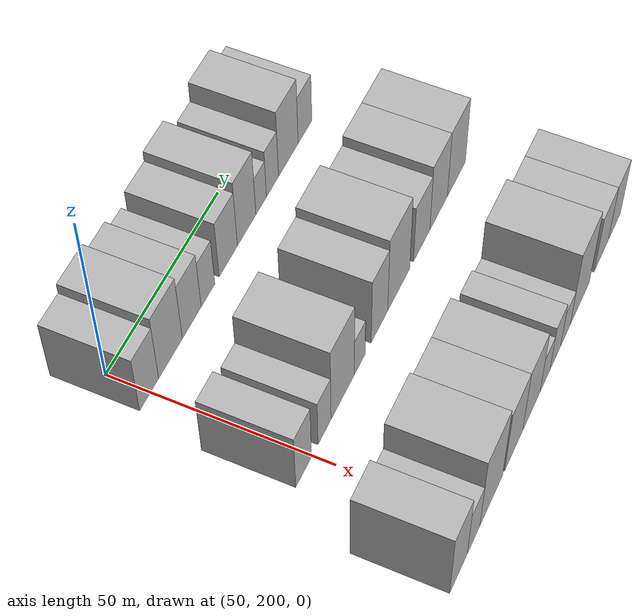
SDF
<sdf version="1.6">
 <world name="default">
  <model name="building_62">
   <static>1</static>
   <pose>50.0000 199.4339 0 0.000000 0.000000 0.000000</pose>
   <link name="link">
    <pose>0 0 9.00 0 0 0</pose>
    <collision name="collision"><geometry><box><size>20.0000 8.0856 18.0000</size></box></geometry></collision>
    <visual name="visual">
     <cast_shadows>0</cast_shadows>
     <geometry><box><size>20.0000 8.0856 18.0000</size></box></geometry>
     <material>
      <script>
       <uri>model://HANNAS_wall/materials/scripts</uri>
       <uri>model://HANNAS_wall/materials/textures</uri>
       <name>vrc/HANNAS_wall</name>
      </script>
     </material>
    </visual>
   </link>
  </model>
  <model name="building_63">
   <static>1</static>
   <pose>50.0000 208.6387 0 0.000000 0.000000 0.000000</pose>
   <link name="link">
    <pose>0 0 10.50 0 0 0</pose>
    <collision name="collision"><geometry><box><size>20.0000 10.3241 21.0000</size></box></geometry></collision>
    <visual name="visual">
     <cast_shadows>0</cast_shadows>
     <geometry><box><size>20.0000 10.3241 21.0000</size></box></geometry>
     <material>
      <script>
       <uri>model://HANNAS_wall/materials/scripts</uri>
       <uri>model://HANNAS_wall/materials/textures</uri>
       <name>vrc/HANNAS_wall</name>
      </script>
     </material>
    </visual>
   </link>
  </model>
  <model name="building_64">
   <static>1</static>
   <pose>50.0000 218.0024 0 0.000000 0.000000 0.000000</pose>
   <link name="link">
    <pose>0 0 9.00 0 0 0</pose>
    <collision name="collision"><geometry><box><size>20.0000 8.4034 18.0000</size></box></geometry></collision>
    <visual name="visual">
     <cast_shadows>0</cast_shadows>
     <geometry><box><size>20.0000 8.4034 18.0000</size></box></geometry>
     <material>
      <script>
       <uri>model://HANNAS_wall/materials/scripts</uri>
       <uri>model://HANNAS_wall/materials/textures</uri>
       <name>vrc/HANNAS_wall</name>
      </script>
     </material>
    </visual>
   </link>
  </model>
  <model name="building_65">
   <static>1</static>
   <pose>50.0000 225.3311 0 0.000000 0.000000 0.000000</pose>
   <link name="link">
    <pose>0 0 7.50 0 0 0</pose>
    <collision name="collision"><geometry><box><size>20.0000 6.2540 15.0000</size></box></geometry></collision>
    <visual name="visual">
     <cast_shadows>0</cast_shadows>
     <geometry><box><size>20.0000 6.2540 15.0000</size></box></geometry>
     <material>
      <script>
       <uri>model://HANNAS_wall/materials/scripts</uri>
       <uri>model://HANNAS_wall/materials/textures</uri>
       <name>vrc/HANNAS_wall</name>
      </script>
     </material>
    </visual>
   </link>
  </model>
  <model name="building_66">
   <static>1</static>
   <pose>50.0000 234.7401 0 0.000000 0.000000 0.000000</pose>
   <link name="link">
    <pose>0 0 9.00 0 0 0</pose>
    <collision name="collision"><geometry><box><size>20.0000 8.5640 18.0000</size></box></geometry></collision>
    <visual name="visual">
     <cast_shadows>0</cast_shadows>
     <geometry><box><size>20.0000 8.5640 18.0000</size></box></geometry>
     <material>
      <script>
       <uri>model://HANNAS_wall/materials/scripts</uri>
       <uri>model://HANNAS_wall/materials/textures</uri>
       <name>vrc/HANNAS_wall</name>
      </script>
     </material>
    </visual>
   </link>
  </model>
  <model name="building_67">
   <static>1</static>
   <pose>50.0000 243.4571 0 0.000000 0.000000 0.000000</pose>
   <link name="link">
    <pose>0 0 10.50 0 0 0</pose>
    <collision name="collision"><geometry><box><size>20.0000 8.8699 21.0000</size></box></geometry></collision>
    <visual name="visual">
     <cast_shadows>0</cast_shadows>
     <geometry><box><size>20.0000 8.8699 21.0000</size></box></geometry>
     <material>
      <script>
       <uri>model://HANNAS_wall/materials/scripts</uri>
       <uri>model://HANNAS_wall/materials/textures</uri>
       <name>vrc/HANNAS_wall</name>
      </script>
     </material>
    </visual>
   </link>
  </model>
  <model name="building_68">
   <static>1</static>
   <pose>50.0000 250.4916 0 0.000000 0.000000 0.000000</pose>
   <link name="link">
    <pose>0 0 6.00 0 0 0</pose>
    <collision name="collision"><geometry><box><size>20.0000 5.1992 12.0000</size></box></geometry></collision>
    <visual name="visual">
     <cast_shadows>0</cast_shadows>
     <geometry><box><size>20.0000 5.1992 12.0000</size></box></geometry>
     <material>
      <script>
       <uri>model://HANNAS_wall/materials/scripts</uri>
       <uri>model://HANNAS_wall/materials/textures</uri>
       <name>vrc/HANNAS_wall</name>
      </script>
     </material>
    </visual>
   </link>
  </model>
  <model name="building_69">
   <static>1</static>
   <pose>50.0000 256.1137 0 0.000000 0.000000 0.000000</pose>
   <link name="link">
    <pose>0 0 7.50 0 0 0</pose>
    <collision name="collision"><geometry><box><size>20.0000 6.0450 15.0000</size></box></geometry></collision>
    <visual name="visual">
     <cast_shadows>0</cast_shadows>
     <geometry><box><size>20.0000 6.0450 15.0000</size></box></geometry>
     <material>
      <script>
       <uri>model://HANNAS_wall/materials/scripts</uri>
       <uri>model://HANNAS_wall/materials/textures</uri>
       <name>vrc/HANNAS_wall</name>
      </script>
     </material>
    </visual>
   </link>
  </model>
  <model name="building_70">
   <static>1</static>
   <pose>50.0000 264.1032 0 0.000000 0.000000 0.000000</pose>
   <link name="link">
    <pose>0 0 10.50 0 0 0</pose>
    <collision name="collision"><geometry><box><size>20.0000 9.9339 21.0000</size></box></geometry></collision>
    <visual name="visual">
     <cast_shadows>0</cast_shadows>
     <geometry><box><size>20.0000 9.9339 21.0000</size></box></geometry>
     <material>
      <script>
       <uri>model://HANNAS_wall/materials/scripts</uri>
       <uri>model://HANNAS_wall/materials/textures</uri>
       <name>vrc/HANNAS_wall</name>
      </script>
     </material>
    </visual>
   </link>
  </model>
  <model name="building_71">
   <static>1</static>
   <pose>50.0000 272.6266 0 0.000000 0.000000 0.000000</pose>
   <link name="link">
    <pose>0 0 7.50 0 0 0</pose>
    <collision name="collision"><geometry><box><size>20.0000 7.1130 15.0000</size></box></geometry></collision>
    <visual name="visual">
     <cast_shadows>0</cast_shadows>
     <geometry><box><size>20.0000 7.1130 15.0000</size></box></geometry>
     <material>
      <script>
       <uri>model://HANNAS_wall/materials/scripts</uri>
       <uri>model://HANNAS_wall/materials/textures</uri>
       <name>vrc/HANNAS_wall</name>
      </script>
     </material>
    </visual>
   </link>
  </model>
  <model name="building_143">
   <static>1</static>
   <pose>85.0000 196.0362 0 0.000000 0.000000 0.000000</pose>
   <link name="link">
    <pose>0 0 9.00 0 0 0</pose>
    <collision name="collision"><geometry><box><size>20.0000 7.2174 18.0000</size></box></geometry></collision>
    <visual name="visual">
     <cast_shadows>0</cast_shadows>
     <geometry><box><size>20.0000 7.2174 18.0000</size></box></geometry>
     <material>
      <script>
       <uri>model://HANNAS_wall/materials/scripts</uri>
       <uri>model://HANNAS_wall/materials/textures</uri>
       <name>vrc/HANNAS_wall</name>
      </script>
     </material>
    </visual>
   </link>
  </model>
  <model name="building_144">
   <static>1</static>
   <pose>85.0000 205.6955 0 0.000000 0.000000 0.000000</pose>
   <link name="link">
    <pose>0 0 7.50 0 0 0</pose>
    <collision name="collision"><geometry><box><size>20.0000 6.1010 15.0000</size></box></geometry></collision>
    <visual name="visual">
     <cast_shadows>0</cast_shadows>
     <geometry><box><size>20.0000 6.1010 15.0000</size></box></geometry>
     <material>
      <script>
       <uri>model://HANNAS_wall/materials/scripts</uri>
       <uri>model://HANNAS_wall/materials/textures</uri>
       <name>vrc/HANNAS_wall</name>
      </script>
     </material>
    </visual>
   </link>
  </model>
  <model name="building_145">
   <static>1</static>
   <pose>85.0000 214.3514 0 0.000000 0.000000 0.000000</pose>
   <link name="link">
    <pose>0 0 12.00 0 0 0</pose>
    <collision name="collision"><geometry><box><size>20.0000 11.2107 24.0000</size></box></geometry></collision>
    <visual name="visual">
     <cast_shadows>0</cast_shadows>
     <geometry><box><size>20.0000 11.2107 24.0000</size></box></geometry>
     <material>
      <script>
       <uri>model://HANNAS_wall/materials/scripts</uri>
       <uri>model://HANNAS_wall/materials/textures</uri>
       <name>vrc/HANNAS_wall</name>
      </script>
     </material>
    </visual>
   </link>
  </model>
  <model name="building_146">
   <static>1</static>
   <pose>85.0000 222.6321 0 0.000000 0.000000 0.000000</pose>
   <link name="link">
    <pose>0 0 6.00 0 0 0</pose>
    <collision name="collision"><geometry><box><size>20.0000 5.3507 12.0000</size></box></geometry></collision>
    <visual name="visual">
     <cast_shadows>0</cast_shadows>
     <geometry><box><size>20.0000 5.3507 12.0000</size></box></geometry>
     <material>
      <script>
       <uri>model://HANNAS_wall/materials/scripts</uri>
       <uri>model://HANNAS_wall/materials/textures</uri>
       <name>vrc/HANNAS_wall</name>
      </script>
     </material>
    </visual>
   </link>
  </model>
  <model name="building_147">
   <static>1</static>
   <pose>85.0000 232.5090 0 0.000000 0.000000 0.000000</pose>
   <link name="link">
    <pose>0 0 10.50 0 0 0</pose>
    <collision name="collision"><geometry><box><size>20.0000 8.4032 21.0000</size></box></geometry></collision>
    <visual name="visual">
     <cast_shadows>0</cast_shadows>
     <geometry><box><size>20.0000 8.4032 21.0000</size></box></geometry>
     <material>
      <script>
       <uri>model://HANNAS_wall/materials/scripts</uri>
       <uri>model://HANNAS_wall/materials/textures</uri>
       <name>vrc/HANNAS_wall</name>
      </script>
     </material>
    </visual>
   </link>
  </model>
  <model name="building_148">
   <static>1</static>
   <pose>85.0000 242.4690 0 0.000000 0.000000 0.000000</pose>
   <link name="link">
    <pose>0 0 12.00 0 0 0</pose>
    <collision name="collision"><geometry><box><size>20.0000 11.5169 24.0000</size></box></geometry></collision>
    <visual name="visual">
     <cast_shadows>0</cast_shadows>
     <geometry><box><size>20.0000 11.5169 24.0000</size></box></geometry>
     <material>
      <script>
       <uri>model://HANNAS_wall/materials/scripts</uri>
       <uri>model://HANNAS_wall/materials/textures</uri>
       <name>vrc/HANNAS_wall</name>
      </script>
     </material>
    </visual>
   </link>
  </model>
  <model name="building_149">
   <static>1</static>
   <pose>85.0000 254.6485 0 0.000000 0.000000 0.000000</pose>
   <link name="link">
    <pose>0 0 9.00 0 0 0</pose>
    <collision name="collision"><geometry><box><size>20.0000 8.8421 18.0000</size></box></geometry></collision>
    <visual name="visual">
     <cast_shadows>0</cast_shadows>
     <geometry><box><size>20.0000 8.8421 18.0000</size></box></geometry>
     <material>
      <script>
       <uri>model://HANNAS_wall/materials/scripts</uri>
       <uri>model://HANNAS_wall/materials/textures</uri>
       <name>vrc/HANNAS_wall</name>
      </script>
     </material>
    </visual>
   </link>
  </model>
  <model name="building_150">
   <static>1</static>
   <pose>85.0000 263.9497 0 0.000000 0.000000 0.000000</pose>
   <link name="link">
    <pose>0 0 10.50 0 0 0</pose>
    <collision name="collision"><geometry><box><size>20.0000 9.7602 21.0000</size></box></geometry></collision>
    <visual name="visual">
     <cast_shadows>0</cast_shadows>
     <geometry><box><size>20.0000 9.7602 21.0000</size></box></geometry>
     <material>
      <script>
       <uri>model://HANNAS_wall/materials/scripts</uri>
       <uri>model://HANNAS_wall/materials/textures</uri>
       <name>vrc/HANNAS_wall</name>
      </script>
     </material>
    </visual>
   </link>
  </model>
  <model name="building_151">
   <static>1</static>
   <pose>85.0000 273.9224 0 0.000000 0.000000 0.000000</pose>
   <link name="link">
    <pose>0 0 10.50 0 0 0</pose>
    <collision name="collision"><geometry><box><size>20.0000 10.1851 21.0000</size></box></geometry></collision>
    <visual name="visual">
     <cast_shadows>0</cast_shadows>
     <geometry><box><size>20.0000 10.1851 21.0000</size></box></geometry>
     <material>
      <script>
       <uri>model://HANNAS_wall/materials/scripts</uri>
       <uri>model://HANNAS_wall/materials/textures</uri>
       <name>vrc/HANNAS_wall</name>
      </script>
     </material>
    </visual>
   </link>
  </model>
  <model name="building_223">
   <static>1</static>
   <pose>120.0000 188.3859 0 0.000000 0.000000 0.000000</pose>
   <link name="link">
    <pose>0 0 10.50 0 0 0</pose>
    <collision name="collision"><geometry><box><size>20.0000 8.7671 21.0000</size></box></geometry></collision>
    <visual name="visual">
     <cast_shadows>0</cast_shadows>
     <geometry><box><size>20.0000 8.7671 21.0000</size></box></geometry>
     <material>
      <script>
       <uri>model://HANNAS_wall/materials/scripts</uri>
       <uri>model://HANNAS_wall/materials/textures</uri>
       <name>vrc/HANNAS_wall</name>
      </script>
     </material>
    </visual>
   </link>
  </model>
  <model name="building_224">
   <static>1</static>
   <pose>120.0000 195.9147 0 0.000000 0.000000 0.000000</pose>
   <link name="link">
    <pose>0 0 7.50 0 0 0</pose>
    <collision name="collision"><geometry><box><size>20.0000 6.2905 15.0000</size></box></geometry></collision>
    <visual name="visual">
     <cast_shadows>0</cast_shadows>
     <geometry><box><size>20.0000 6.2905 15.0000</size></box></geometry>
     <material>
      <script>
       <uri>model://HANNAS_wall/materials/scripts</uri>
       <uri>model://HANNAS_wall/materials/textures</uri>
       <name>vrc/HANNAS_wall</name>
      </script>
     </material>
    </visual>
   </link>
  </model>
  <model name="building_225">
   <static>1</static>
   <pose>120.0000 204.9559 0 0.000000 0.000000 0.000000</pose>
   <link name="link">
    <pose>0 0 12.00 0 0 0</pose>
    <collision name="collision"><geometry><box><size>20.0000 11.7918 24.0000</size></box></geometry></collision>
    <visual name="visual">
     <cast_shadows>0</cast_shadows>
     <geometry><box><size>20.0000 11.7918 24.0000</size></box></geometry>
     <material>
      <script>
       <uri>model://HANNAS_wall/materials/scripts</uri>
       <uri>model://HANNAS_wall/materials/textures</uri>
       <name>vrc/HANNAS_wall</name>
      </script>
     </material>
    </visual>
   </link>
  </model>
  <model name="building_226">
   <static>1</static>
   <pose>120.0000 216.6866 0 0.000000 0.000000 0.000000</pose>
   <link name="link">
    <pose>0 0 10.50 0 0 0</pose>
    <collision name="collision"><geometry><box><size>20.0000 9.6697 21.0000</size></box></geometry></collision>
    <visual name="visual">
     <cast_shadows>0</cast_shadows>
     <geometry><box><size>20.0000 9.6697 21.0000</size></box></geometry>
     <material>
      <script>
       <uri>model://HANNAS_wall/materials/scripts</uri>
       <uri>model://HANNAS_wall/materials/textures</uri>
       <name>vrc/HANNAS_wall</name>
      </script>
     </material>
    </visual>
   </link>
  </model>
  <model name="building_227">
   <static>1</static>
   <pose>120.0000 226.3587 0 0.000000 0.000000 0.000000</pose>
   <link name="link">
    <pose>0 0 10.50 0 0 0</pose>
    <collision name="collision"><geometry><box><size>20.0000 9.6745 21.0000</size></box></geometry></collision>
    <visual name="visual">
     <cast_shadows>0</cast_shadows>
     <geometry><box><size>20.0000 9.6745 21.0000</size></box></geometry>
     <material>
      <script>
       <uri>model://HANNAS_wall/materials/scripts</uri>
       <uri>model://HANNAS_wall/materials/textures</uri>
       <name>vrc/HANNAS_wall</name>
      </script>
     </material>
    </visual>
   </link>
  </model>
  <model name="building_228">
   <static>1</static>
   <pose>120.0000 233.9906 0 0.000000 0.000000 0.000000</pose>
   <link name="link">
    <pose>0 0 6.00 0 0 0</pose>
    <collision name="collision"><geometry><box><size>20.0000 5.5893 12.0000</size></box></geometry></collision>
    <visual name="visual">
     <cast_shadows>0</cast_shadows>
     <geometry><box><size>20.0000 5.5893 12.0000</size></box></geometry>
     <material>
      <script>
       <uri>model://HANNAS_wall/materials/scripts</uri>
       <uri>model://HANNAS_wall/materials/textures</uri>
       <name>vrc/HANNAS_wall</name>
      </script>
     </material>
    </visual>
   </link>
  </model>
  <model name="building_229">
   <static>1</static>
   <pose>120.0000 239.8373 0 0.000000 0.000000 0.000000</pose>
   <link name="link">
    <pose>0 0 7.50 0 0 0</pose>
    <collision name="collision"><geometry><box><size>20.0000 6.1040 15.0000</size></box></geometry></collision>
    <visual name="visual">
     <cast_shadows>0</cast_shadows>
     <geometry><box><size>20.0000 6.1040 15.0000</size></box></geometry>
     <material>
      <script>
       <uri>model://HANNAS_wall/materials/scripts</uri>
       <uri>model://HANNAS_wall/materials/textures</uri>
       <name>vrc/HANNAS_wall</name>
      </script>
     </material>
    </visual>
   </link>
  </model>
  <model name="building_230">
   <static>1</static>
   <pose>120.0000 245.6949 0 0.000000 0.000000 0.000000</pose>
   <link name="link">
    <pose>0 0 6.00 0 0 0</pose>
    <collision name="collision"><geometry><box><size>20.0000 5.6112 12.0000</size></box></geometry></collision>
    <visual name="visual">
     <cast_shadows>0</cast_shadows>
     <geometry><box><size>20.0000 5.6112 12.0000</size></box></geometry>
     <material>
      <script>
       <uri>model://HANNAS_wall/materials/scripts</uri>
       <uri>model://HANNAS_wall/materials/textures</uri>
       <name>vrc/HANNAS_wall</name>
      </script>
     </material>
    </visual>
   </link>
  </model>
  <model name="building_231">
   <static>1</static>
   <pose>120.0000 254.2475 0 0.000000 0.000000 0.000000</pose>
   <link name="link">
    <pose>0 0 12.00 0 0 0</pose>
    <collision name="collision"><geometry><box><size>20.0000 11.4940 24.0000</size></box></geometry></collision>
    <visual name="visual">
     <cast_shadows>0</cast_shadows>
     <geometry><box><size>20.0000 11.4940 24.0000</size></box></geometry>
     <material>
      <script>
       <uri>model://HANNAS_wall/materials/scripts</uri>
       <uri>model://HANNAS_wall/materials/textures</uri>
       <name>vrc/HANNAS_wall</name>
      </script>
     </material>
    </visual>
   </link>
  </model>
  <model name="building_232">
   <static>1</static>
   <pose>120.0000 267.3554 0 0.000000 0.000000 0.000000</pose>
   <link name="link">
    <pose>0 0 9.00 0 0 0</pose>
    <collision name="collision"><geometry><box><size>20.0000 8.7217 18.0000</size></box></geometry></collision>
    <visual name="visual">
     <cast_shadows>0</cast_shadows>
     <geometry><box><size>20.0000 8.7217 18.0000</size></box></geometry>
     <material>
      <script>
       <uri>model://HANNAS_wall/materials/scripts</uri>
       <uri>model://HANNAS_wall/materials/textures</uri>
       <name>vrc/HANNAS_wall</name>
      </script>
     </material>
    </visual>
   </link>
  </model>
  <model name="building_233">
   <static>1</static>
   <pose>120.0000 275.6116 0 0.000000 0.000000 0.000000</pose>
   <link name="link">
    <pose>0 0 9.00 0 0 0</pose>
    <collision name="collision"><geometry><box><size>20.0000 7.7907 18.0000</size></box></geometry></collision>
    <visual name="visual">
     <cast_shadows>0</cast_shadows>
     <geometry><box><size>20.0000 7.7907 18.0000</size></box></geometry>
     <material>
      <script>
       <uri>model://HANNAS_wall/materials/scripts</uri>
       <uri>model://HANNAS_wall/materials/textures</uri>
       <name>vrc/HANNAS_wall</name>
      </script>
     </material>
    </visual>
   </link>
  </model>
 </world>
</sdf>
